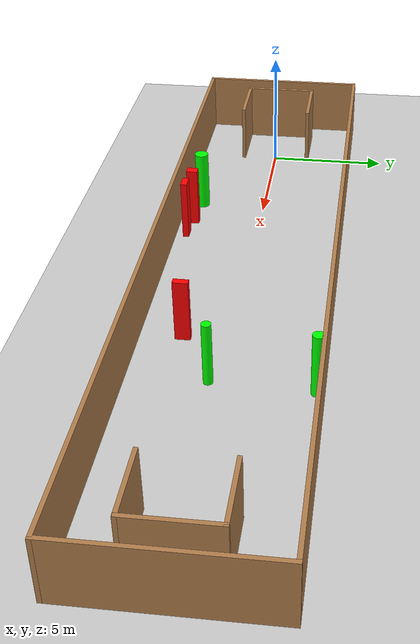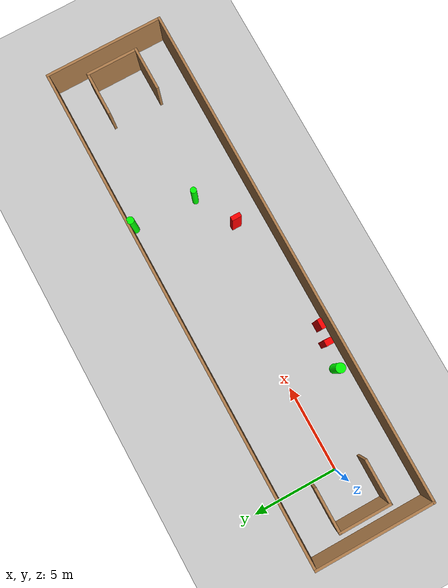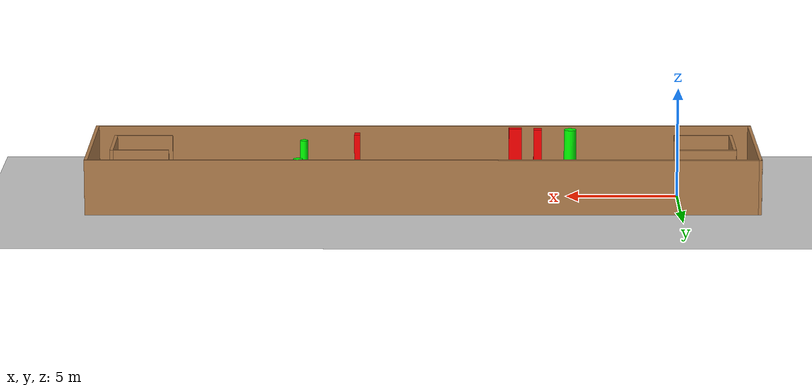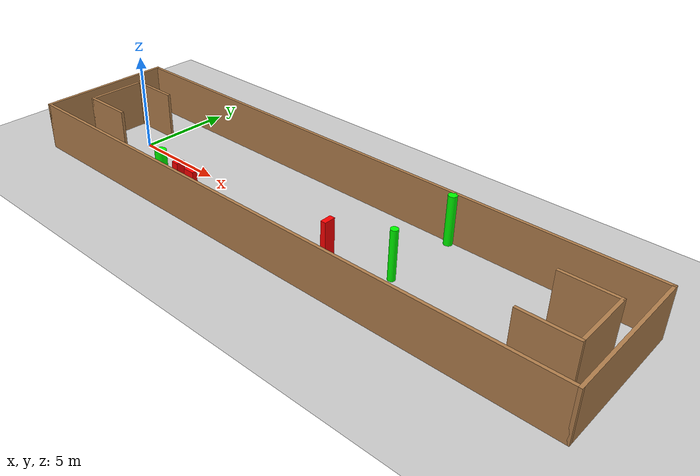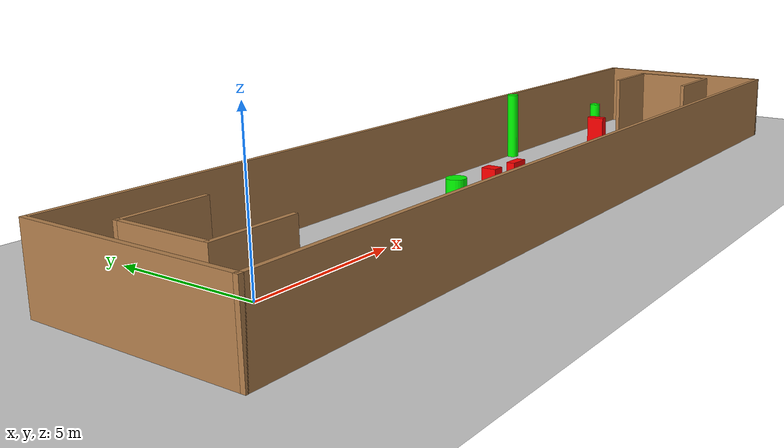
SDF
<sdf version="1.7">
 <world name="default">
  <light name="sun" type="directional">
   <pose>0 0 10 0 -0 0</pose>
   <diffuse>0.8 0.8 0.8 1</diffuse>
   <specular>0.2 0.2 0.2 1</specular>
   <attenuation>
    <range>1000</range>
    <constant>0.9</constant>
    <linear>0.01</linear>
    <quadratic>0.001</quadratic>
   </attenuation>
   <direction>-0.5 0.1 -0.9</direction>
   <spot><inner_angle>0</inner_angle><outer_angle>0</outer_angle><falloff>0</falloff></spot>
  </light>
  <model name="ground_plane">
   <static>1</static>
   <link name="link">
    <collision name="collision">
     <geometry><plane><normal>0 0 1</normal><size>100 100</size></plane></geometry>
     <surface>
      <contact><collide_bitmask>65535</collide_bitmask></contact>
      <friction><ode><mu>100</mu><mu2>50</mu2></ode></friction>
     </surface>
    </collision>
    <visual name="visual">
     <cast_shadows>0</cast_shadows>
     <geometry><plane><normal>0 0 1</normal><size>100 100</size></plane></geometry>
     <material>
      <script><uri>file://media/materials/scripts/gazebo.material</uri><name>Gazebo/Grey</name></script>
     </material>
    </visual>
   </link>
  </model>
  <gravity>0 0 -9.8</gravity>
  <magnetic_field>6e-06 2.3e-05 -4.2e-05</magnetic_field>
  <atmosphere type="adiabatic"/>
  <physics type="ode">
   <max_step_size>0.001</max_step_size>
   <real_time_factor>1</real_time_factor>
   <real_time_update_rate>1000</real_time_update_rate>
  </physics>
  <scene><ambient>0.4 0.4 0.4 1</ambient><background>0.7 0.7 0.7 1</background><shadows>1</shadows></scene>
  <spherical_coordinates>
   <surface_model>EARTH_WGS84</surface_model>
   <latitude_deg>0</latitude_deg>
   <longitude_deg>0</longitude_deg>
   <elevation>0</elevation>
   <heading_deg>0</heading_deg>
  </spherical_coordinates>
  <model name="my_base_walls">
   <link name="Wall_0">
    <collision name="Wall_0_Collision">
     <geometry><box><size>7.15 0.15 2.5</size></box></geometry>
     <pose>0 0 1.25 0 -0 0</pose>
    </collision>
    <visual name="Wall_0_Visual">
     <pose>0 0 1.25 0 -0 0</pose>
     <geometry><box><size>7.15 0.15 2.5</size></box></geometry>
     <material>
      <script><uri>file://media/materials/scripts/gazebo.material</uri><name>Gazebo/Wood</name></script>
      <ambient>1 1 1 1</ambient>
     </material>
     <meta><layer>0</layer></meta>
    </visual>
    <pose>-15 0 0 0 -0 1.5708</pose>
   </link>
   <link name="Wall_10">
    <collision name="Wall_10_Collision">
     <geometry><box><size>2.65 0.15 2.5</size></box></geometry>
     <pose>0 0 1.25 0 -0 0</pose>
    </collision>
    <visual name="Wall_10_Visual">
     <pose>0 0 1.25 0 -0 0</pose>
     <geometry><box><size>2.65 0.15 2.5</size></box></geometry>
     <material>
      <script><uri>file://media/materials/scripts/gazebo.material</uri><name>Gazebo/Wood</name></script>
      <ambient>1 1 1 1</ambient>
     </material>
     <meta><layer>0</layer></meta>
    </visual>
    <pose>-12.75 -1.5 0 0 -0 0</pose>
   </link>
   <link name="Wall_12">
    <collision name="Wall_12_Collision">
     <geometry><box><size>2.65 0.15 2.5</size></box></geometry>
     <pose>0 0 1.25 0 -0 0</pose>
    </collision>
    <visual name="Wall_12_Visual">
     <pose>0 0 1.25 0 -0 0</pose>
     <geometry><box><size>2.65 0.15 2.5</size></box></geometry>
     <material>
      <script><uri>file://media/materials/scripts/gazebo.material</uri><name>Gazebo/Wood</name></script>
      <ambient>1 1 1 1</ambient>
     </material>
     <meta><layer>0</layer></meta>
    </visual>
    <pose>-12.75 1.5 0 0 -0 0</pose>
   </link>
   <link name="Wall_14">
    <collision name="Wall_14_Collision">
     <geometry><box><size>3.15 0.15 2.5</size></box></geometry>
     <pose>0 0 1.25 0 -0 0</pose>
    </collision>
    <visual name="Wall_14_Visual">
     <pose>0 0 1.25 0 -0 0</pose>
     <geometry><box><size>3.15 0.15 2.5</size></box></geometry>
     <material>
      <script><uri>file://media/materials/scripts/gazebo.material</uri><name>Gazebo/Wood</name></script>
      <ambient>1 1 1 1</ambient>
     </material>
     <meta><layer>0</layer></meta>
    </visual>
    <pose>14 0 0 0 -0 -1.5708</pose>
   </link>
   <link name="Wall_15">
    <collision name="Wall_15_Collision">
     <geometry><box><size>2.65 0.15 2.5</size></box></geometry>
     <pose>0 0 1.25 0 -0 0</pose>
    </collision>
    <visual name="Wall_15_Visual">
     <pose>0 0 1.25 0 -0 0</pose>
     <geometry><box><size>2.65 0.15 2.5</size></box></geometry>
     <material>
      <script><uri>file://media/materials/scripts/gazebo.material</uri><name>Gazebo/Wood</name></script>
      <ambient>1 1 1 1</ambient>
     </material>
     <meta><layer>0</layer></meta>
    </visual>
    <pose>12.75 -1.5 0 0 -0 3.14159</pose>
   </link>
   <link name="Wall_17">
    <collision name="Wall_17_Collision">
     <geometry><box><size>2.65 0.15 2.5</size></box></geometry>
     <pose>0 0 1.25 0 -0 0</pose>
    </collision>
    <visual name="Wall_17_Visual">
     <pose>0 0 1.25 0 -0 0</pose>
     <geometry><box><size>2.65 0.15 2.5</size></box></geometry>
     <material>
      <script><uri>file://media/materials/scripts/gazebo.material</uri><name>Gazebo/Wood</name></script>
      <ambient>1 1 1 1</ambient>
     </material>
     <meta><layer>0</layer></meta>
    </visual>
    <pose>12.75 1.5 0 0 -0 3.14159</pose>
   </link>
   <link name="Wall_2">
    <collision name="Wall_2_Collision">
     <geometry><box><size>30.15 0.15 2.5</size></box></geometry>
     <pose>0 0 1.25 0 -0 0</pose>
    </collision>
    <visual name="Wall_2_Visual">
     <pose>0 0 1.25 0 -0 0</pose>
     <geometry><box><size>30.15 0.15 2.5</size></box></geometry>
     <material>
      <script><uri>file://media/materials/scripts/gazebo.material</uri><name>Gazebo/Wood</name></script>
      <ambient>1 1 1 1</ambient>
     </material>
     <meta><layer>0</layer></meta>
    </visual>
    <pose>-0 -3.5 0 0 -0 0</pose>
   </link>
   <link name="Wall_4">
    <collision name="Wall_4_Collision">
     <geometry><box><size>30.15 0.15 2.5</size></box></geometry>
     <pose>0 0 1.25 0 -0 0</pose>
    </collision>
    <visual name="Wall_4_Visual">
     <pose>0 0 1.25 0 -0 0</pose>
     <geometry><box><size>30.15 0.15 2.5</size></box></geometry>
     <material>
      <script><uri>file://media/materials/scripts/gazebo.material</uri><name>Gazebo/Wood</name></script>
      <ambient>1 1 1 1</ambient>
     </material>
     <meta><layer>0</layer></meta>
    </visual>
    <pose>-0 3.5 0 0 -0 0</pose>
   </link>
   <link name="Wall_6">
    <collision name="Wall_6_Collision">
     <geometry><box><size>7.15 0.15 2.5</size></box></geometry>
     <pose>0 0 1.25 0 -0 0</pose>
    </collision>
    <visual name="Wall_6_Visual">
     <pose>0 0 1.25 0 -0 0</pose>
     <geometry><box><size>7.15 0.15 2.5</size></box></geometry>
     <material>
      <script><uri>file://media/materials/scripts/gazebo.material</uri><name>Gazebo/Wood</name></script>
      <ambient>1 1 1 1</ambient>
     </material>
     <meta><layer>0</layer></meta>
    </visual>
    <pose>15 0 0 0 -0 -1.5708</pose>
   </link>
   <link name="Wall_9">
    <collision name="Wall_9_Collision">
     <geometry><box><size>3.15 0.15 2.5</size></box></geometry>
     <pose>0 0 1.25 0 -0 0</pose>
    </collision>
    <visual name="Wall_9_Visual">
     <pose>0 0 1.25 0 -0 0</pose>
     <geometry><box><size>3.15 0.15 2.5</size></box></geometry>
     <material>
      <script><uri>file://media/materials/scripts/gazebo.material</uri><name>Gazebo/Wood</name></script>
      <ambient>1 1 1 1</ambient>
     </material>
     <meta><layer>0</layer></meta>
    </visual>
    <pose>-14 0 0 0 -0 -1.5708</pose>
   </link>
   <static>1</static>
   <pose>11.5 0 0 0 -0 0</pose>
  </model>
  <model name="cylinder1">
   <static>1</static>
   <link name="link">
    <inertial>
     <mass>1</mass>
     <inertia><ixx>0.5</ixx><ixy>0</ixy><ixz>0</ixz><iyy>0.5</iyy><iyz>0</iyz><izz>1</izz></inertia>
    </inertial>
    <collision name="collision">
     <geometry><cylinder><radius>0.2828232353550206</radius><length>2.5</length></cylinder></geometry>
    </collision>
    <visual name="visual">
     <geometry><cylinder><radius>0.2828232353550206</radius><length>2.5</length></cylinder></geometry>
     <material>
      <ambient>0 1 0 1</ambient>
      <diffuse>0 1 0 1</diffuse>
      <specular>0.1 0.1 0.1 1</specular>
      <emissive>0 0 0 0</emissive>
     </material>
    </visual>
   </link>
   <pose>4.761115583772213 -2.704842925127838 1.25 0 0 0</pose>
  </model>
  <model name="cylinder2">
   <static>1</static>
   <link name="link">
    <inertial>
     <mass>1</mass>
     <inertia><ixx>0.5</ixx><ixy>0</ixy><ixz>0</ixz><iyy>0.5</iyy><iyz>0</iyz><izz>1</izz></inertia>
    </inertial>
    <collision name="collision">
     <geometry><cylinder><radius>0.21336502346805866</radius><length>2.5</length></cylinder></geometry>
    </collision>
    <visual name="visual">
     <geometry><cylinder><radius>0.21336502346805866</radius><length>2.5</length></cylinder></geometry>
     <material>
      <ambient>0 1 0 1</ambient>
      <diffuse>0 1 0 1</diffuse>
      <specular>0.1 0.1 0.1 1</specular>
      <emissive>0 0 0 0</emissive>
     </material>
    </visual>
   </link>
   <pose>17.07506565767373 3.2906316438584415 1.25 0 0 0</pose>
  </model>
  <model name="cylinder3">
   <static>1</static>
   <link name="link">
    <inertial>
     <mass>1</mass>
     <inertia><ixx>0.5</ixx><ixy>0</ixy><ixz>0</ixz><iyy>0.5</iyy><iyz>0</iyz><izz>1</izz></inertia>
    </inertial>
    <collision name="collision">
     <geometry><cylinder><radius>0.18024370926398037</radius><length>2.5</length></cylinder></geometry>
    </collision>
    <visual name="visual">
     <geometry><cylinder><radius>0.18024370926398037</radius><length>2.5</length></cylinder></geometry>
     <material>
      <ambient>0 1 0 1</ambient>
      <diffuse>0 1 0 1</diffuse>
      <specular>0.1 0.1 0.1 1</specular>
      <emissive>0 0 0 0</emissive>
     </material>
    </visual>
   </link>
   <pose>16.90550344452503 -0.4873411810815256 1.25 0 0 0</pose>
  </model>
  <model name="box1">
   <static>1</static>
   <link name="link">
    <inertial>
     <mass>1</mass>
     <inertia><ixx>0.083</ixx><ixy>0</ixy><ixz>0</ixz><iyy>0.083</iyy><iyz>0</iyz><izz>0.083</izz></inertia>
    </inertial>
    <collision name="collision">
     <geometry><box><size>0.5889705919723058 0.2513009655746353 2.5</size></box></geometry>
    </collision>
    <visual name="visual">
     <geometry><box><size>0.5889705919723058 0.2513009655746353 2.5</size></box></geometry>
     <material>
      <ambient>1 0 0 1</ambient>
      <diffuse>1 0 0 1</diffuse>
      <specular>0.1 0.1 0.1 1</specular>
      <emissive>0 0 0 0</emissive>
     </material>
    </visual>
    <sensor name="my_contact" type="contact">
     <contact><collision>box_collision</collision><topic>__default_topic__</topic></contact>
    </sensor>
   </link>
   <pose>7.275413510027175 -2.982773791367365 1.25 0 0 0</pose>
  </model>
  <model name="box2">
   <static>1</static>
   <link name="link">
    <inertial>
     <mass>1</mass>
     <inertia><ixx>0.083</ixx><ixy>0</ixy><ixz>0</ixz><iyy>0.083</iyy><iyz>0</iyz><izz>0.083</izz></inertia>
    </inertial>
    <collision name="collision">
     <geometry><box><size>0.2598426817266479 0.5773564990649838 2.5</size></box></geometry>
    </collision>
    <visual name="visual">
     <geometry><box><size>0.2598426817266479 0.5773564990649838 2.5</size></box></geometry>
     <material>
      <ambient>1 0 0 1</ambient>
      <diffuse>1 0 0 1</diffuse>
      <specular>0.1 0.1 0.1 1</specular>
      <emissive>0 0 0 0</emissive>
     </material>
    </visual>
    <sensor name="my_contact" type="contact">
     <contact><collision>box_collision</collision><topic>__default_topic__</topic></contact>
    </sensor>
   </link>
   <pose>14.515859691853892 -1.802771882958486 1.25 0 0 0</pose>
  </model>
  <model name="box3">
   <static>1</static>
   <link name="link">
    <inertial>
     <mass>1</mass>
     <inertia><ixx>0.083</ixx><ixy>0</ixy><ixz>0</ixz><iyy>0.083</iyy><iyz>0</iyz><izz>0.083</izz></inertia>
    </inertial>
    <collision name="collision">
     <geometry><box><size>0.35864509676824563 0.44941267379927247 2.5</size></box></geometry>
    </collision>
    <visual name="visual">
     <geometry><box><size>0.35864509676824563 0.44941267379927247 2.5</size></box></geometry>
     <material>
      <ambient>1 0 0 1</ambient>
      <diffuse>1 0 0 1</diffuse>
      <specular>0.1 0.1 0.1 1</specular>
      <emissive>0 0 0 0</emissive>
     </material>
    </visual>
    <sensor name="my_contact" type="contact">
     <contact><collision>box_collision</collision><topic>__default_topic__</topic></contact>
    </sensor>
   </link>
   <pose>6.254666723881094 -2.8468045652090614 1.25 0 0 0</pose>
  </model>
 </world>
</sdf>
